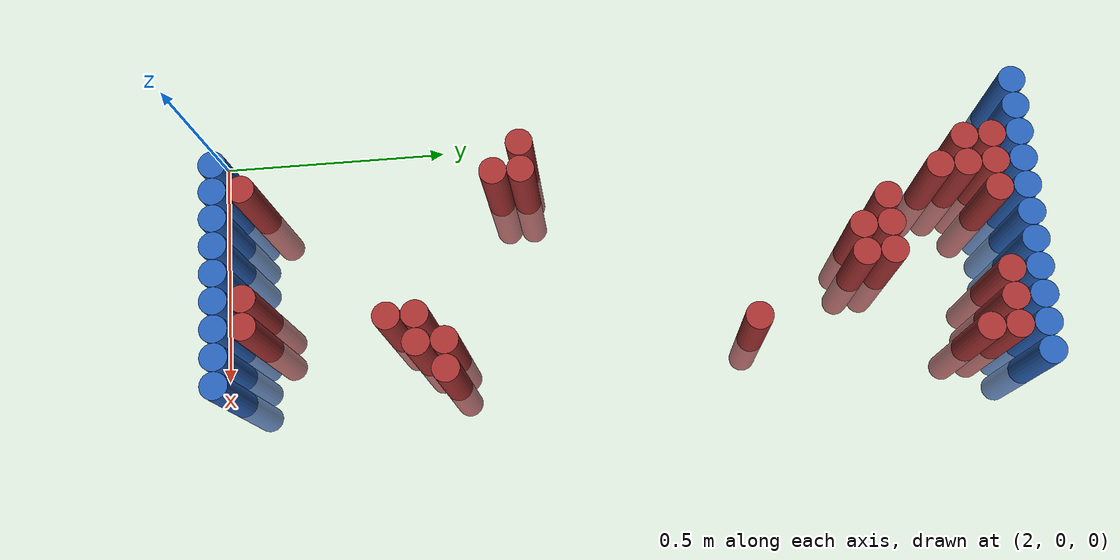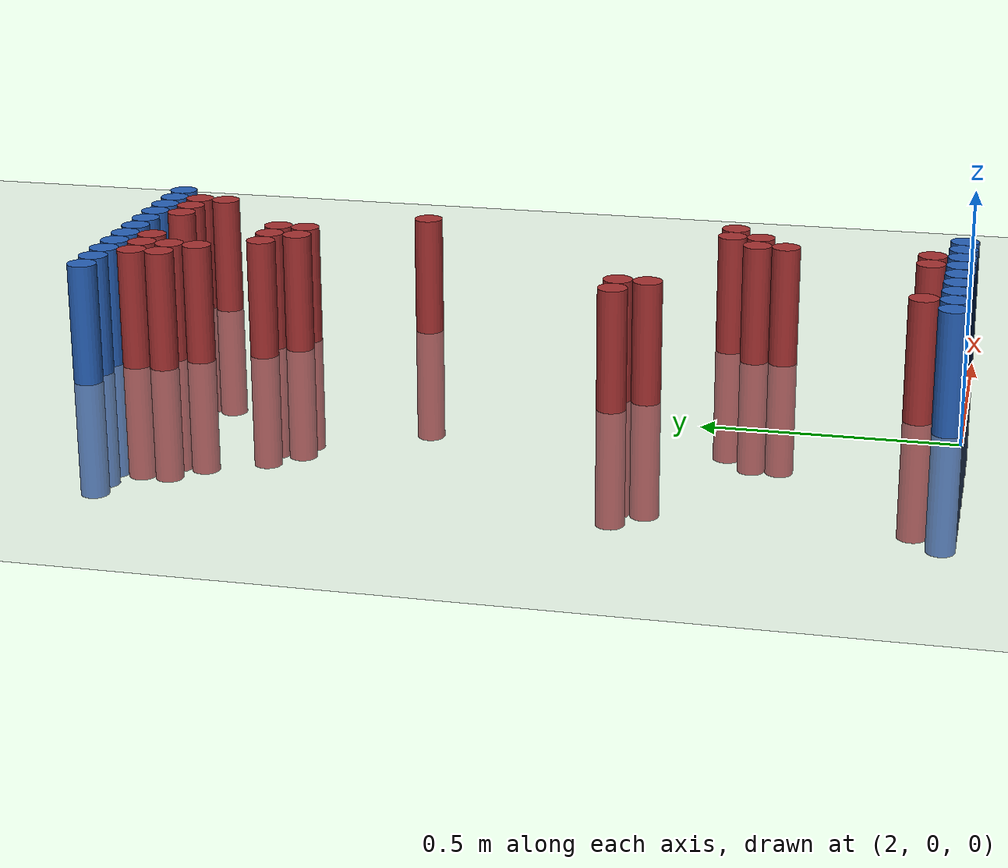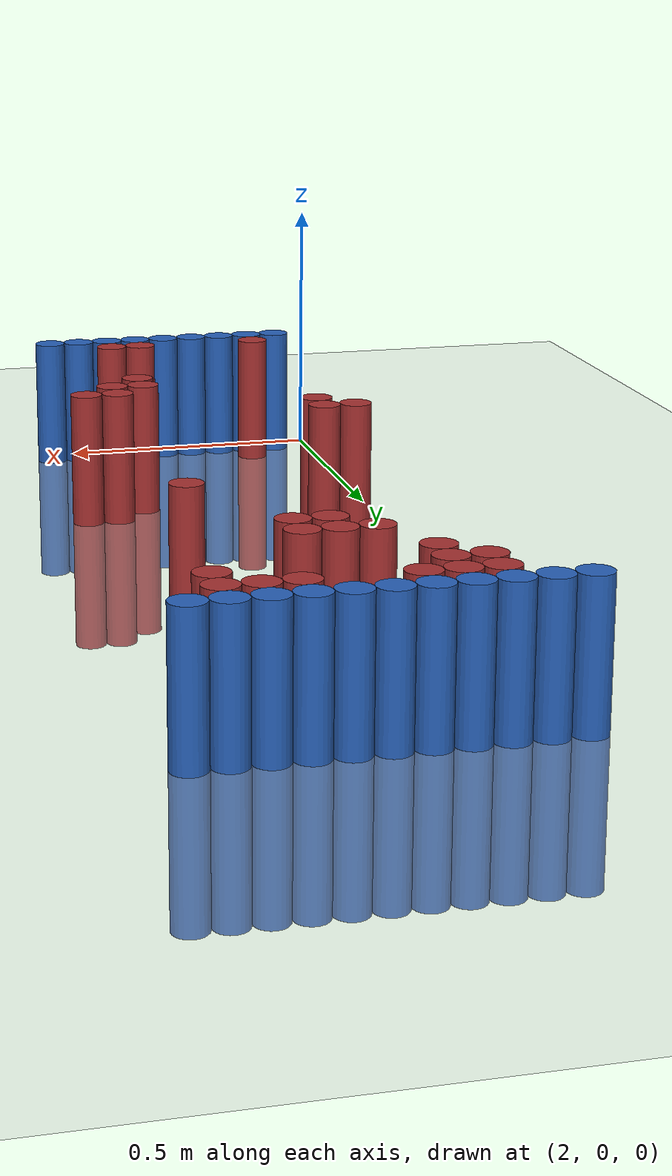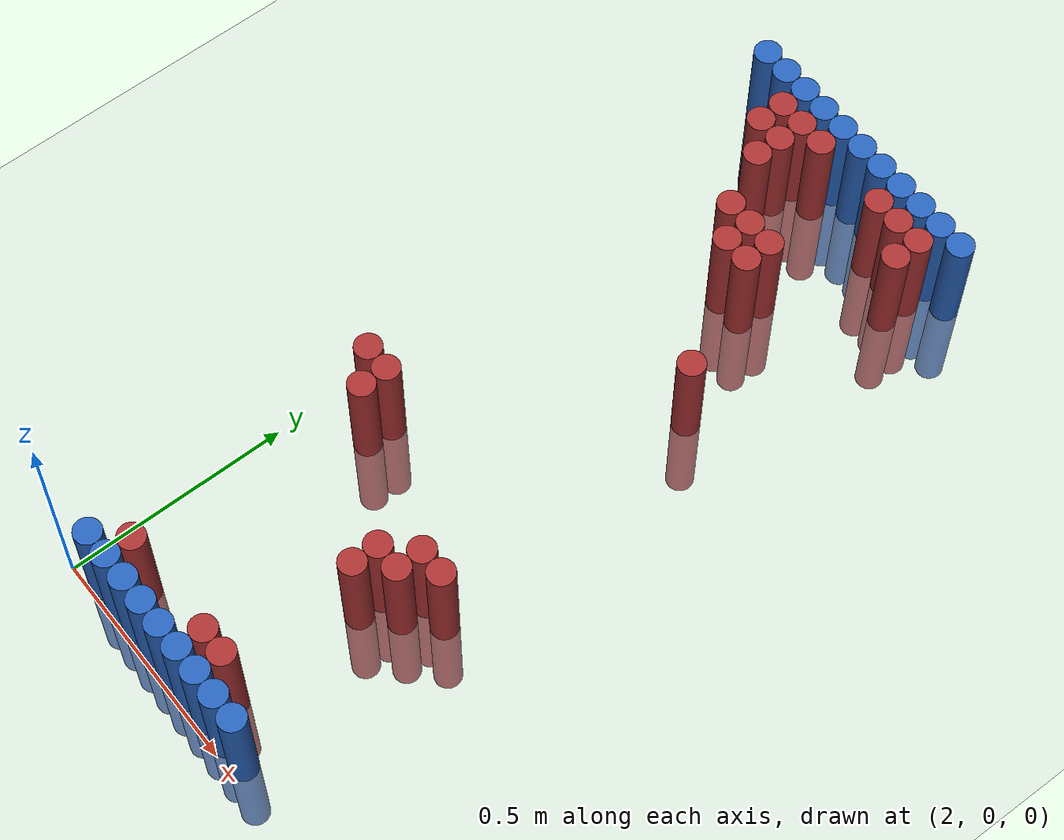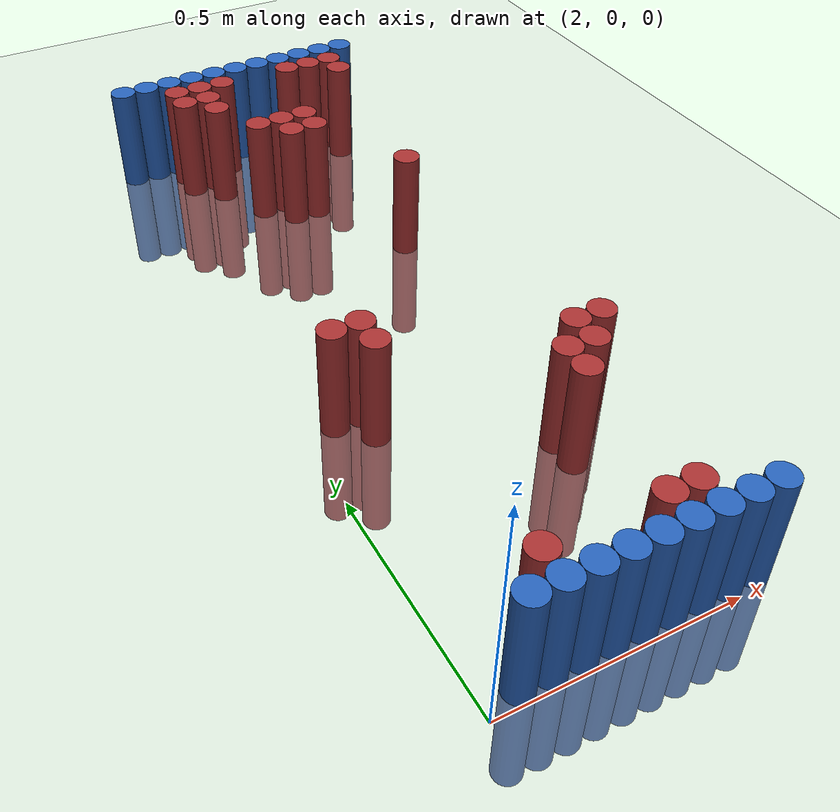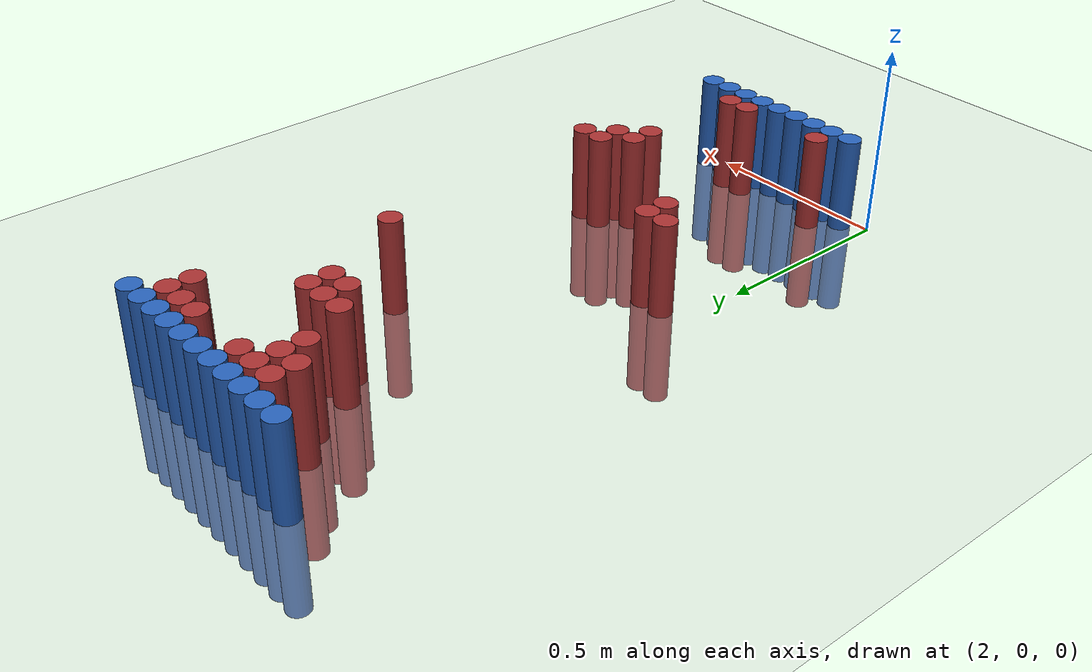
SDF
<sdf version="1.6">
 <world name="default">
  <model name="ground_plane">
   <static>1</static>
   <link name="link">
    <collision name="collision">
     <geometry><plane><normal>0 0 1</normal><size>100 100</size></plane></geometry>
     <surface><friction><ode><mu>100</mu><mu2>50</mu2></ode></friction></surface>
    </collision>
    <visual name="visual">
     <cast_shadows>0</cast_shadows>
     <geometry><plane><normal>0 0 1</normal><size>100 100</size></plane></geometry>
     <material>
      <script><uri>file://media/materials/scripts/gazebo.material</uri><name>Gazebo/Grey</name></script>
     </material>
    </visual>
   </link>
  </model>
  <model name="unit_cylinder_94">
   <static>1</static>
   <pose>2.010000 1.770000 0.000000 0.000000 0.000000 0.000000</pose>
   <link name="link">
    <inertial>
     <mass>1</mass>
     <inertia><ixx>0.145833</ixx><ixy>0</ixy><ixz>0</ixz><iyy>0.145833</iyy><iyz>0</iyz><izz>0.125</izz></inertia>
    </inertial>
    <collision name="collision">
     <geometry><cylinder><radius>0.030000</radius><length>0.5</length></cylinder></geometry>
    </collision>
    <visual name="visual">
     <geometry><cylinder><radius>0.030000</radius><length>0.5</length></cylinder></geometry>
     <material>
      <ambient>0.152000 0.379000 0.720000 1</ambient>
      <diffuse>0.152000 0.379000 0.720000 1</diffuse>
     </material>
     <material>
      <script><name>Gazebo/Grey</name><uri>file://media/materials/scripts/gazebo.material</uri></script>
     </material>
    </visual>
   </link>
  </model>
  <model name="unit_cylinder_95">
   <static>1</static>
   <pose>2.070000 1.770000 0.000000 0.000000 0.000000 0.000000</pose>
   <link name="link">
    <inertial>
     <mass>1</mass>
     <inertia><ixx>0.145833</ixx><ixy>0</ixy><ixz>0</ixz><iyy>0.145833</iyy><iyz>0</iyz><izz>0.125</izz></inertia>
    </inertial>
    <collision name="collision">
     <geometry><cylinder><radius>0.030000</radius><length>0.5</length></cylinder></geometry>
    </collision>
    <visual name="visual">
     <geometry><cylinder><radius>0.030000</radius><length>0.5</length></cylinder></geometry>
     <material>
      <ambient>0.152000 0.379000 0.720000 1</ambient>
      <diffuse>0.152000 0.379000 0.720000 1</diffuse>
     </material>
     <material>
      <script><name>Gazebo/Grey</name><uri>file://media/materials/scripts/gazebo.material</uri></script>
     </material>
    </visual>
   </link>
  </model>
  <model name="unit_cylinder_96">
   <static>1</static>
   <pose>2.130000 1.770000 0.000000 0.000000 0.000000 0.000000</pose>
   <link name="link">
    <inertial>
     <mass>1</mass>
     <inertia><ixx>0.145833</ixx><ixy>0</ixy><ixz>0</ixz><iyy>0.145833</iyy><iyz>0</iyz><izz>0.125</izz></inertia>
    </inertial>
    <collision name="collision">
     <geometry><cylinder><radius>0.030000</radius><length>0.5</length></cylinder></geometry>
    </collision>
    <visual name="visual">
     <geometry><cylinder><radius>0.030000</radius><length>0.5</length></cylinder></geometry>
     <material>
      <ambient>0.152000 0.379000 0.720000 1</ambient>
      <diffuse>0.152000 0.379000 0.720000 1</diffuse>
     </material>
     <material>
      <script><name>Gazebo/Grey</name><uri>file://media/materials/scripts/gazebo.material</uri></script>
     </material>
    </visual>
   </link>
  </model>
  <model name="unit_cylinder_97">
   <static>1</static>
   <pose>2.190000 1.770000 0.000000 0.000000 0.000000 0.000000</pose>
   <link name="link">
    <inertial>
     <mass>1</mass>
     <inertia><ixx>0.145833</ixx><ixy>0</ixy><ixz>0</ixz><iyy>0.145833</iyy><iyz>0</iyz><izz>0.125</izz></inertia>
    </inertial>
    <collision name="collision">
     <geometry><cylinder><radius>0.030000</radius><length>0.5</length></cylinder></geometry>
    </collision>
    <visual name="visual">
     <geometry><cylinder><radius>0.030000</radius><length>0.5</length></cylinder></geometry>
     <material>
      <ambient>0.152000 0.379000 0.720000 1</ambient>
      <diffuse>0.152000 0.379000 0.720000 1</diffuse>
     </material>
     <material>
      <script><name>Gazebo/Grey</name><uri>file://media/materials/scripts/gazebo.material</uri></script>
     </material>
    </visual>
   </link>
  </model>
  <model name="unit_cylinder_98">
   <static>1</static>
   <pose>2.250000 1.770000 0.000000 0.000000 0.000000 0.000000</pose>
   <link name="link">
    <inertial>
     <mass>1</mass>
     <inertia><ixx>0.145833</ixx><ixy>0</ixy><ixz>0</ixz><iyy>0.145833</iyy><iyz>0</iyz><izz>0.125</izz></inertia>
    </inertial>
    <collision name="collision">
     <geometry><cylinder><radius>0.030000</radius><length>0.5</length></cylinder></geometry>
    </collision>
    <visual name="visual">
     <geometry><cylinder><radius>0.030000</radius><length>0.5</length></cylinder></geometry>
     <material>
      <ambient>0.152000 0.379000 0.720000 1</ambient>
      <diffuse>0.152000 0.379000 0.720000 1</diffuse>
     </material>
     <material>
      <script><name>Gazebo/Grey</name><uri>file://media/materials/scripts/gazebo.material</uri></script>
     </material>
    </visual>
   </link>
  </model>
  <model name="unit_cylinder_99">
   <static>1</static>
   <pose>2.310000 1.770000 0.000000 0.000000 0.000000 0.000000</pose>
   <link name="link">
    <inertial>
     <mass>1</mass>
     <inertia><ixx>0.145833</ixx><ixy>0</ixy><ixz>0</ixz><iyy>0.145833</iyy><iyz>0</iyz><izz>0.125</izz></inertia>
    </inertial>
    <collision name="collision">
     <geometry><cylinder><radius>0.030000</radius><length>0.5</length></cylinder></geometry>
    </collision>
    <visual name="visual">
     <geometry><cylinder><radius>0.030000</radius><length>0.5</length></cylinder></geometry>
     <material>
      <ambient>0.152000 0.379000 0.720000 1</ambient>
      <diffuse>0.152000 0.379000 0.720000 1</diffuse>
     </material>
     <material>
      <script><name>Gazebo/Grey</name><uri>file://media/materials/scripts/gazebo.material</uri></script>
     </material>
    </visual>
   </link>
  </model>
  <model name="unit_cylinder_100">
   <static>1</static>
   <pose>2.370000 1.770000 0.000000 0.000000 0.000000 0.000000</pose>
   <link name="link">
    <inertial>
     <mass>1</mass>
     <inertia><ixx>0.145833</ixx><ixy>0</ixy><ixz>0</ixz><iyy>0.145833</iyy><iyz>0</iyz><izz>0.125</izz></inertia>
    </inertial>
    <collision name="collision">
     <geometry><cylinder><radius>0.030000</radius><length>0.5</length></cylinder></geometry>
    </collision>
    <visual name="visual">
     <geometry><cylinder><radius>0.030000</radius><length>0.5</length></cylinder></geometry>
     <material>
      <ambient>0.152000 0.379000 0.720000 1</ambient>
      <diffuse>0.152000 0.379000 0.720000 1</diffuse>
     </material>
     <material>
      <script><name>Gazebo/Grey</name><uri>file://media/materials/scripts/gazebo.material</uri></script>
     </material>
    </visual>
   </link>
  </model>
  <model name="unit_cylinder_101">
   <static>1</static>
   <pose>2.430000 1.770000 0.000000 0.000000 0.000000 0.000000</pose>
   <link name="link">
    <inertial>
     <mass>1</mass>
     <inertia><ixx>0.145833</ixx><ixy>0</ixy><ixz>0</ixz><iyy>0.145833</iyy><iyz>0</iyz><izz>0.125</izz></inertia>
    </inertial>
    <collision name="collision">
     <geometry><cylinder><radius>0.030000</radius><length>0.5</length></cylinder></geometry>
    </collision>
    <visual name="visual">
     <geometry><cylinder><radius>0.030000</radius><length>0.5</length></cylinder></geometry>
     <material>
      <ambient>0.152000 0.379000 0.720000 1</ambient>
      <diffuse>0.152000 0.379000 0.720000 1</diffuse>
     </material>
     <material>
      <script><name>Gazebo/Grey</name><uri>file://media/materials/scripts/gazebo.material</uri></script>
     </material>
    </visual>
   </link>
  </model>
  <model name="unit_cylinder_102">
   <static>1</static>
   <pose>2.490000 1.770000 0.000000 0.000000 0.000000 0.000000</pose>
   <link name="link">
    <inertial>
     <mass>1</mass>
     <inertia><ixx>0.145833</ixx><ixy>0</ixy><ixz>0</ixz><iyy>0.145833</iyy><iyz>0</iyz><izz>0.125</izz></inertia>
    </inertial>
    <collision name="collision">
     <geometry><cylinder><radius>0.030000</radius><length>0.5</length></cylinder></geometry>
    </collision>
    <visual name="visual">
     <geometry><cylinder><radius>0.030000</radius><length>0.5</length></cylinder></geometry>
     <material>
      <ambient>0.152000 0.379000 0.720000 1</ambient>
      <diffuse>0.152000 0.379000 0.720000 1</diffuse>
     </material>
     <material>
      <script><name>Gazebo/Grey</name><uri>file://media/materials/scripts/gazebo.material</uri></script>
     </material>
    </visual>
   </link>
  </model>
  <model name="unit_cylinder_103">
   <static>1</static>
   <pose>2.550000 1.770000 0.000000 0.000000 0.000000 0.000000</pose>
   <link name="link">
    <inertial>
     <mass>1</mass>
     <inertia><ixx>0.145833</ixx><ixy>0</ixy><ixz>0</ixz><iyy>0.145833</iyy><iyz>0</iyz><izz>0.125</izz></inertia>
    </inertial>
    <collision name="collision">
     <geometry><cylinder><radius>0.030000</radius><length>0.5</length></cylinder></geometry>
    </collision>
    <visual name="visual">
     <geometry><cylinder><radius>0.030000</radius><length>0.5</length></cylinder></geometry>
     <material>
      <ambient>0.152000 0.379000 0.720000 1</ambient>
      <diffuse>0.152000 0.379000 0.720000 1</diffuse>
     </material>
     <material>
      <script><name>Gazebo/Grey</name><uri>file://media/materials/scripts/gazebo.material</uri></script>
     </material>
    </visual>
   </link>
  </model>
  <model name="unit_cylinder_104">
   <static>1</static>
   <pose>2.610000 1.770000 0.000000 0.000000 0.000000 0.000000</pose>
   <link name="link">
    <inertial>
     <mass>1</mass>
     <inertia><ixx>0.145833</ixx><ixy>0</ixy><ixz>0</ixz><iyy>0.145833</iyy><iyz>0</iyz><izz>0.125</izz></inertia>
    </inertial>
    <collision name="collision">
     <geometry><cylinder><radius>0.030000</radius><length>0.5</length></cylinder></geometry>
    </collision>
    <visual name="visual">
     <geometry><cylinder><radius>0.030000</radius><length>0.5</length></cylinder></geometry>
     <material>
      <ambient>0.152000 0.379000 0.720000 1</ambient>
      <diffuse>0.152000 0.379000 0.720000 1</diffuse>
     </material>
     <material>
      <script><name>Gazebo/Grey</name><uri>file://media/materials/scripts/gazebo.material</uri></script>
     </material>
    </visual>
   </link>
  </model>
  <model name="unit_cylinder_125">
   <static>1</static>
   <pose>2.130000 1.710000 0.000000 0.000000 0.000000 0.000000</pose>
   <link name="link">
    <inertial>
     <mass>1</mass>
     <inertia><ixx>0.145833</ixx><ixy>0</ixy><ixz>0</ixz><iyy>0.145833</iyy><iyz>0</iyz><izz>0.125</izz></inertia>
    </inertial>
    <collision name="collision">
     <geometry><cylinder><radius>0.030000</radius><length>0.5</length></cylinder></geometry>
    </collision>
    <visual name="visual">
     <geometry><cylinder><radius>0.030000</radius><length>0.5</length></cylinder></geometry>
     <material>
      <ambient>0.648000 0.192000 0.192000 1</ambient>
      <diffuse>0.648000 0.192000 0.192000 1</diffuse>
     </material>
     <material>
      <script><name>Gazebo/Grey</name><uri>file://media/materials/scripts/gazebo.material</uri></script>
     </material>
    </visual>
   </link>
  </model>
  <model name="unit_cylinder_126">
   <static>1</static>
   <pose>2.190000 1.710000 0.000000 0.000000 0.000000 0.000000</pose>
   <link name="link">
    <inertial>
     <mass>1</mass>
     <inertia><ixx>0.145833</ixx><ixy>0</ixy><ixz>0</ixz><iyy>0.145833</iyy><iyz>0</iyz><izz>0.125</izz></inertia>
    </inertial>
    <collision name="collision">
     <geometry><cylinder><radius>0.030000</radius><length>0.5</length></cylinder></geometry>
    </collision>
    <visual name="visual">
     <geometry><cylinder><radius>0.030000</radius><length>0.5</length></cylinder></geometry>
     <material>
      <ambient>0.648000 0.192000 0.192000 1</ambient>
      <diffuse>0.648000 0.192000 0.192000 1</diffuse>
     </material>
     <material>
      <script><name>Gazebo/Grey</name><uri>file://media/materials/scripts/gazebo.material</uri></script>
     </material>
    </visual>
   </link>
  </model>
  <model name="unit_cylinder_127">
   <static>1</static>
   <pose>2.250000 1.710000 0.000000 0.000000 0.000000 0.000000</pose>
   <link name="link">
    <inertial>
     <mass>1</mass>
     <inertia><ixx>0.145833</ixx><ixy>0</ixy><ixz>0</ixz><iyy>0.145833</iyy><iyz>0</iyz><izz>0.125</izz></inertia>
    </inertial>
    <collision name="collision">
     <geometry><cylinder><radius>0.030000</radius><length>0.5</length></cylinder></geometry>
    </collision>
    <visual name="visual">
     <geometry><cylinder><radius>0.030000</radius><length>0.5</length></cylinder></geometry>
     <material>
      <ambient>0.648000 0.192000 0.192000 1</ambient>
      <diffuse>0.648000 0.192000 0.192000 1</diffuse>
     </material>
     <material>
      <script><name>Gazebo/Grey</name><uri>file://media/materials/scripts/gazebo.material</uri></script>
     </material>
    </visual>
   </link>
  </model>
  <model name="unit_cylinder_128">
   <static>1</static>
   <pose>2.430000 1.710000 0.000000 0.000000 0.000000 0.000000</pose>
   <link name="link">
    <inertial>
     <mass>1</mass>
     <inertia><ixx>0.145833</ixx><ixy>0</ixy><ixz>0</ixz><iyy>0.145833</iyy><iyz>0</iyz><izz>0.125</izz></inertia>
    </inertial>
    <collision name="collision">
     <geometry><cylinder><radius>0.030000</radius><length>0.5</length></cylinder></geometry>
    </collision>
    <visual name="visual">
     <geometry><cylinder><radius>0.030000</radius><length>0.5</length></cylinder></geometry>
     <material>
      <ambient>0.648000 0.192000 0.192000 1</ambient>
      <diffuse>0.648000 0.192000 0.192000 1</diffuse>
     </material>
     <material>
      <script><name>Gazebo/Grey</name><uri>file://media/materials/scripts/gazebo.material</uri></script>
     </material>
    </visual>
   </link>
  </model>
  <model name="unit_cylinder_129">
   <static>1</static>
   <pose>2.490000 1.710000 0.000000 0.000000 0.000000 0.000000</pose>
   <link name="link">
    <inertial>
     <mass>1</mass>
     <inertia><ixx>0.145833</ixx><ixy>0</ixy><ixz>0</ixz><iyy>0.145833</iyy><iyz>0</iyz><izz>0.125</izz></inertia>
    </inertial>
    <collision name="collision">
     <geometry><cylinder><radius>0.030000</radius><length>0.5</length></cylinder></geometry>
    </collision>
    <visual name="visual">
     <geometry><cylinder><radius>0.030000</radius><length>0.5</length></cylinder></geometry>
     <material>
      <ambient>0.648000 0.192000 0.192000 1</ambient>
      <diffuse>0.648000 0.192000 0.192000 1</diffuse>
     </material>
     <material>
      <script><name>Gazebo/Grey</name><uri>file://media/materials/scripts/gazebo.material</uri></script>
     </material>
    </visual>
   </link>
  </model>
  <model name="unit_cylinder_130">
   <static>1</static>
   <pose>2.550000 1.710000 0.000000 0.000000 0.000000 0.000000</pose>
   <link name="link">
    <inertial>
     <mass>1</mass>
     <inertia><ixx>0.145833</ixx><ixy>0</ixy><ixz>0</ixz><iyy>0.145833</iyy><iyz>0</iyz><izz>0.125</izz></inertia>
    </inertial>
    <collision name="collision">
     <geometry><cylinder><radius>0.030000</radius><length>0.5</length></cylinder></geometry>
    </collision>
    <visual name="visual">
     <geometry><cylinder><radius>0.030000</radius><length>0.5</length></cylinder></geometry>
     <material>
      <ambient>0.648000 0.192000 0.192000 1</ambient>
      <diffuse>0.648000 0.192000 0.192000 1</diffuse>
     </material>
     <material>
      <script><name>Gazebo/Grey</name><uri>file://media/materials/scripts/gazebo.material</uri></script>
     </material>
    </visual>
   </link>
  </model>
  <model name="unit_cylinder_141">
   <static>1</static>
   <pose>2.130000 1.650000 0.000000 0.000000 0.000000 0.000000</pose>
   <link name="link">
    <inertial>
     <mass>1</mass>
     <inertia><ixx>0.145833</ixx><ixy>0</ixy><ixz>0</ixz><iyy>0.145833</iyy><iyz>0</iyz><izz>0.125</izz></inertia>
    </inertial>
    <collision name="collision">
     <geometry><cylinder><radius>0.030000</radius><length>0.5</length></cylinder></geometry>
    </collision>
    <visual name="visual">
     <geometry><cylinder><radius>0.030000</radius><length>0.5</length></cylinder></geometry>
     <material>
      <ambient>0.648000 0.192000 0.192000 1</ambient>
      <diffuse>0.648000 0.192000 0.192000 1</diffuse>
     </material>
     <material>
      <script><name>Gazebo/Grey</name><uri>file://media/materials/scripts/gazebo.material</uri></script>
     </material>
    </visual>
   </link>
  </model>
  <model name="unit_cylinder_142">
   <static>1</static>
   <pose>2.190000 1.650000 0.000000 0.000000 0.000000 0.000000</pose>
   <link name="link">
    <inertial>
     <mass>1</mass>
     <inertia><ixx>0.145833</ixx><ixy>0</ixy><ixz>0</ixz><iyy>0.145833</iyy><iyz>0</iyz><izz>0.125</izz></inertia>
    </inertial>
    <collision name="collision">
     <geometry><cylinder><radius>0.030000</radius><length>0.5</length></cylinder></geometry>
    </collision>
    <visual name="visual">
     <geometry><cylinder><radius>0.030000</radius><length>0.5</length></cylinder></geometry>
     <material>
      <ambient>0.648000 0.192000 0.192000 1</ambient>
      <diffuse>0.648000 0.192000 0.192000 1</diffuse>
     </material>
     <material>
      <script><name>Gazebo/Grey</name><uri>file://media/materials/scripts/gazebo.material</uri></script>
     </material>
    </visual>
   </link>
  </model>
  <model name="unit_cylinder_143">
   <static>1</static>
   <pose>2.550000 1.650000 0.000000 0.000000 0.000000 0.000000</pose>
   <link name="link">
    <inertial>
     <mass>1</mass>
     <inertia><ixx>0.145833</ixx><ixy>0</ixy><ixz>0</ixz><iyy>0.145833</iyy><iyz>0</iyz><izz>0.125</izz></inertia>
    </inertial>
    <collision name="collision">
     <geometry><cylinder><radius>0.030000</radius><length>0.5</length></cylinder></geometry>
    </collision>
    <visual name="visual">
     <geometry><cylinder><radius>0.030000</radius><length>0.5</length></cylinder></geometry>
     <material>
      <ambient>0.648000 0.192000 0.192000 1</ambient>
      <diffuse>0.648000 0.192000 0.192000 1</diffuse>
     </material>
     <material>
      <script><name>Gazebo/Grey</name><uri>file://media/materials/scripts/gazebo.material</uri></script>
     </material>
    </visual>
   </link>
  </model>
  <model name="unit_cylinder_145">
   <static>1</static>
   <pose>2.190000 1.590000 0.000000 0.000000 0.000000 0.000000</pose>
   <link name="link">
    <inertial>
     <mass>1</mass>
     <inertia><ixx>0.145833</ixx><ixy>0</ixy><ixz>0</ixz><iyy>0.145833</iyy><iyz>0</iyz><izz>0.125</izz></inertia>
    </inertial>
    <collision name="collision">
     <geometry><cylinder><radius>0.030000</radius><length>0.5</length></cylinder></geometry>
    </collision>
    <visual name="visual">
     <geometry><cylinder><radius>0.030000</radius><length>0.5</length></cylinder></geometry>
     <material>
      <ambient>0.648000 0.192000 0.192000 1</ambient>
      <diffuse>0.648000 0.192000 0.192000 1</diffuse>
     </material>
     <material>
      <script><name>Gazebo/Grey</name><uri>file://media/materials/scripts/gazebo.material</uri></script>
     </material>
    </visual>
   </link>
  </model>
  <model name="unit_cylinder_148">
   <static>1</static>
   <pose>2.250000 1.470000 0.000000 0.000000 0.000000 0.000000</pose>
   <link name="link">
    <inertial>
     <mass>1</mass>
     <inertia><ixx>0.145833</ixx><ixy>0</ixy><ixz>0</ixz><iyy>0.145833</iyy><iyz>0</iyz><izz>0.125</izz></inertia>
    </inertial>
    <collision name="collision">
     <geometry><cylinder><radius>0.030000</radius><length>0.5</length></cylinder></geometry>
    </collision>
    <visual name="visual">
     <geometry><cylinder><radius>0.030000</radius><length>0.5</length></cylinder></geometry>
     <material>
      <ambient>0.648000 0.192000 0.192000 1</ambient>
      <diffuse>0.648000 0.192000 0.192000 1</diffuse>
     </material>
     <material>
      <script><name>Gazebo/Grey</name><uri>file://media/materials/scripts/gazebo.material</uri></script>
     </material>
    </visual>
   </link>
  </model>
  <model name="unit_cylinder_149">
   <static>1</static>
   <pose>2.310000 1.470000 0.000000 0.000000 0.000000 0.000000</pose>
   <link name="link">
    <inertial>
     <mass>1</mass>
     <inertia><ixx>0.145833</ixx><ixy>0</ixy><ixz>0</ixz><iyy>0.145833</iyy><iyz>0</iyz><izz>0.125</izz></inertia>
    </inertial>
    <collision name="collision">
     <geometry><cylinder><radius>0.030000</radius><length>0.5</length></cylinder></geometry>
    </collision>
    <visual name="visual">
     <geometry><cylinder><radius>0.030000</radius><length>0.5</length></cylinder></geometry>
     <material>
      <ambient>0.648000 0.192000 0.192000 1</ambient>
      <diffuse>0.648000 0.192000 0.192000 1</diffuse>
     </material>
     <material>
      <script><name>Gazebo/Grey</name><uri>file://media/materials/scripts/gazebo.material</uri></script>
     </material>
    </visual>
   </link>
  </model>
  <model name="unit_cylinder_150">
   <static>1</static>
   <pose>2.370000 1.470000 0.000000 0.000000 0.000000 0.000000</pose>
   <link name="link">
    <inertial>
     <mass>1</mass>
     <inertia><ixx>0.145833</ixx><ixy>0</ixy><ixz>0</ixz><iyy>0.145833</iyy><iyz>0</iyz><izz>0.125</izz></inertia>
    </inertial>
    <collision name="collision">
     <geometry><cylinder><radius>0.030000</radius><length>0.5</length></cylinder></geometry>
    </collision>
    <visual name="visual">
     <geometry><cylinder><radius>0.030000</radius><length>0.5</length></cylinder></geometry>
     <material>
      <ambient>0.648000 0.192000 0.192000 1</ambient>
      <diffuse>0.648000 0.192000 0.192000 1</diffuse>
     </material>
     <material>
      <script><name>Gazebo/Grey</name><uri>file://media/materials/scripts/gazebo.material</uri></script>
     </material>
    </visual>
   </link>
  </model>
  <model name="unit_cylinder_152">
   <static>1</static>
   <pose>2.310000 1.410000 0.000000 0.000000 0.000000 0.000000</pose>
   <link name="link">
    <inertial>
     <mass>1</mass>
     <inertia><ixx>0.145833</ixx><ixy>0</ixy><ixz>0</ixz><iyy>0.145833</iyy><iyz>0</iyz><izz>0.125</izz></inertia>
    </inertial>
    <collision name="collision">
     <geometry><cylinder><radius>0.030000</radius><length>0.5</length></cylinder></geometry>
    </collision>
    <visual name="visual">
     <geometry><cylinder><radius>0.030000</radius><length>0.5</length></cylinder></geometry>
     <material>
      <ambient>0.648000 0.192000 0.192000 1</ambient>
      <diffuse>0.648000 0.192000 0.192000 1</diffuse>
     </material>
     <material>
      <script><name>Gazebo/Grey</name><uri>file://media/materials/scripts/gazebo.material</uri></script>
     </material>
    </visual>
   </link>
  </model>
  <model name="unit_cylinder_153">
   <static>1</static>
   <pose>2.370000 1.410000 0.000000 0.000000 0.000000 0.000000</pose>
   <link name="link">
    <inertial>
     <mass>1</mass>
     <inertia><ixx>0.145833</ixx><ixy>0</ixy><ixz>0</ixz><iyy>0.145833</iyy><iyz>0</iyz><izz>0.125</izz></inertia>
    </inertial>
    <collision name="collision">
     <geometry><cylinder><radius>0.030000</radius><length>0.5</length></cylinder></geometry>
    </collision>
    <visual name="visual">
     <geometry><cylinder><radius>0.030000</radius><length>0.5</length></cylinder></geometry>
     <material>
      <ambient>0.648000 0.192000 0.192000 1</ambient>
      <diffuse>0.648000 0.192000 0.192000 1</diffuse>
     </material>
     <material>
      <script><name>Gazebo/Grey</name><uri>file://media/materials/scripts/gazebo.material</uri></script>
     </material>
    </visual>
   </link>
  </model>
  <model name="unit_cylinder_158">
   <static>1</static>
   <pose>2.490000 1.170000 0.000000 0.000000 0.000000 0.000000</pose>
   <link name="link">
    <inertial>
     <mass>1</mass>
     <inertia><ixx>0.145833</ixx><ixy>0</ixy><ixz>0</ixz><iyy>0.145833</iyy><iyz>0</iyz><izz>0.125</izz></inertia>
    </inertial>
    <collision name="collision">
     <geometry><cylinder><radius>0.030000</radius><length>0.5</length></cylinder></geometry>
    </collision>
    <visual name="visual">
     <geometry><cylinder><radius>0.030000</radius><length>0.5</length></cylinder></geometry>
     <material>
      <ambient>0.648000 0.192000 0.192000 1</ambient>
      <diffuse>0.648000 0.192000 0.192000 1</diffuse>
     </material>
     <material>
      <script><name>Gazebo/Grey</name><uri>file://media/materials/scripts/gazebo.material</uri></script>
     </material>
    </visual>
   </link>
  </model>
  <model name="unit_cylinder_170">
   <static>1</static>
   <pose>2.070000 0.690000 0.000000 0.000000 0.000000 0.000000</pose>
   <link name="link">
    <inertial>
     <mass>1</mass>
     <inertia><ixx>0.145833</ixx><ixy>0</ixy><ixz>0</ixz><iyy>0.145833</iyy><iyz>0</iyz><izz>0.125</izz></inertia>
    </inertial>
    <collision name="collision">
     <geometry><cylinder><radius>0.030000</radius><length>0.5</length></cylinder></geometry>
    </collision>
    <visual name="visual">
     <geometry><cylinder><radius>0.030000</radius><length>0.5</length></cylinder></geometry>
     <material>
      <ambient>0.648000 0.192000 0.192000 1</ambient>
      <diffuse>0.648000 0.192000 0.192000 1</diffuse>
     </material>
     <material>
      <script><name>Gazebo/Grey</name><uri>file://media/materials/scripts/gazebo.material</uri></script>
     </material>
    </visual>
   </link>
  </model>
  <model name="unit_cylinder_171">
   <static>1</static>
   <pose>2.130000 0.690000 0.000000 0.000000 0.000000 0.000000</pose>
   <link name="link">
    <inertial>
     <mass>1</mass>
     <inertia><ixx>0.145833</ixx><ixy>0</ixy><ixz>0</ixz><iyy>0.145833</iyy><iyz>0</iyz><izz>0.125</izz></inertia>
    </inertial>
    <collision name="collision">
     <geometry><cylinder><radius>0.030000</radius><length>0.5</length></cylinder></geometry>
    </collision>
    <visual name="visual">
     <geometry><cylinder><radius>0.030000</radius><length>0.5</length></cylinder></geometry>
     <material>
      <ambient>0.648000 0.192000 0.192000 1</ambient>
      <diffuse>0.648000 0.192000 0.192000 1</diffuse>
     </material>
     <material>
      <script><name>Gazebo/Grey</name><uri>file://media/materials/scripts/gazebo.material</uri></script>
     </material>
    </visual>
   </link>
  </model>
  <model name="unit_cylinder_174">
   <static>1</static>
   <pose>2.130000 0.630000 0.000000 0.000000 0.000000 0.000000</pose>
   <link name="link">
    <inertial>
     <mass>1</mass>
     <inertia><ixx>0.145833</ixx><ixy>0</ixy><ixz>0</ixz><iyy>0.145833</iyy><iyz>0</iyz><izz>0.125</izz></inertia>
    </inertial>
    <collision name="collision">
     <geometry><cylinder><radius>0.030000</radius><length>0.5</length></cylinder></geometry>
    </collision>
    <visual name="visual">
     <geometry><cylinder><radius>0.030000</radius><length>0.5</length></cylinder></geometry>
     <material>
      <ambient>0.648000 0.192000 0.192000 1</ambient>
      <diffuse>0.648000 0.192000 0.192000 1</diffuse>
     </material>
     <material>
      <script><name>Gazebo/Grey</name><uri>file://media/materials/scripts/gazebo.material</uri></script>
     </material>
    </visual>
   </link>
  </model>
  <model name="unit_cylinder_178">
   <static>1</static>
   <pose>2.490000 0.510000 0.000000 0.000000 0.000000 0.000000</pose>
   <link name="link">
    <inertial>
     <mass>1</mass>
     <inertia><ixx>0.145833</ixx><ixy>0</ixy><ixz>0</ixz><iyy>0.145833</iyy><iyz>0</iyz><izz>0.125</izz></inertia>
    </inertial>
    <collision name="collision">
     <geometry><cylinder><radius>0.030000</radius><length>0.5</length></cylinder></geometry>
    </collision>
    <visual name="visual">
     <geometry><cylinder><radius>0.030000</radius><length>0.5</length></cylinder></geometry>
     <material>
      <ambient>0.648000 0.192000 0.192000 1</ambient>
      <diffuse>0.648000 0.192000 0.192000 1</diffuse>
     </material>
     <material>
      <script><name>Gazebo/Grey</name><uri>file://media/materials/scripts/gazebo.material</uri></script>
     </material>
    </visual>
   </link>
  </model>
  <model name="unit_cylinder_179">
   <static>1</static>
   <pose>2.550000 0.510000 0.000000 0.000000 0.000000 0.000000</pose>
   <link name="link">
    <inertial>
     <mass>1</mass>
     <inertia><ixx>0.145833</ixx><ixy>0</ixy><ixz>0</ixz><iyy>0.145833</iyy><iyz>0</iyz><izz>0.125</izz></inertia>
    </inertial>
    <collision name="collision">
     <geometry><cylinder><radius>0.030000</radius><length>0.5</length></cylinder></geometry>
    </collision>
    <visual name="visual">
     <geometry><cylinder><radius>0.030000</radius><length>0.5</length></cylinder></geometry>
     <material>
      <ambient>0.648000 0.192000 0.192000 1</ambient>
      <diffuse>0.648000 0.192000 0.192000 1</diffuse>
     </material>
     <material>
      <script><name>Gazebo/Grey</name><uri>file://media/materials/scripts/gazebo.material</uri></script>
     </material>
    </visual>
   </link>
  </model>
  <model name="unit_cylinder_180">
   <static>1</static>
   <pose>2.430000 0.450000 0.000000 0.000000 0.000000 0.000000</pose>
   <link name="link">
    <inertial>
     <mass>1</mass>
     <inertia><ixx>0.145833</ixx><ixy>0</ixy><ixz>0</ixz><iyy>0.145833</iyy><iyz>0</iyz><izz>0.125</izz></inertia>
    </inertial>
    <collision name="collision">
     <geometry><cylinder><radius>0.030000</radius><length>0.5</length></cylinder></geometry>
    </collision>
    <visual name="visual">
     <geometry><cylinder><radius>0.030000</radius><length>0.5</length></cylinder></geometry>
     <material>
      <ambient>0.648000 0.192000 0.192000 1</ambient>
      <diffuse>0.648000 0.192000 0.192000 1</diffuse>
     </material>
     <material>
      <script><name>Gazebo/Grey</name><uri>file://media/materials/scripts/gazebo.material</uri></script>
     </material>
    </visual>
   </link>
  </model>
  <model name="unit_cylinder_181">
   <static>1</static>
   <pose>2.490000 0.450000 0.000000 0.000000 0.000000 0.000000</pose>
   <link name="link">
    <inertial>
     <mass>1</mass>
     <inertia><ixx>0.145833</ixx><ixy>0</ixy><ixz>0</ixz><iyy>0.145833</iyy><iyz>0</iyz><izz>0.125</izz></inertia>
    </inertial>
    <collision name="collision">
     <geometry><cylinder><radius>0.030000</radius><length>0.5</length></cylinder></geometry>
    </collision>
    <visual name="visual">
     <geometry><cylinder><radius>0.030000</radius><length>0.5</length></cylinder></geometry>
     <material>
      <ambient>0.648000 0.192000 0.192000 1</ambient>
      <diffuse>0.648000 0.192000 0.192000 1</diffuse>
     </material>
     <material>
      <script><name>Gazebo/Grey</name><uri>file://media/materials/scripts/gazebo.material</uri></script>
     </material>
    </visual>
   </link>
  </model>
  <model name="unit_cylinder_182">
   <static>1</static>
   <pose>2.430000 0.390000 0.000000 0.000000 0.000000 0.000000</pose>
   <link name="link">
    <inertial>
     <mass>1</mass>
     <inertia><ixx>0.145833</ixx><ixy>0</ixy><ixz>0</ixz><iyy>0.145833</iyy><iyz>0</iyz><izz>0.125</izz></inertia>
    </inertial>
    <collision name="collision">
     <geometry><cylinder><radius>0.030000</radius><length>0.5</length></cylinder></geometry>
    </collision>
    <visual name="visual">
     <geometry><cylinder><radius>0.030000</radius><length>0.5</length></cylinder></geometry>
     <material>
      <ambient>0.648000 0.192000 0.192000 1</ambient>
      <diffuse>0.648000 0.192000 0.192000 1</diffuse>
     </material>
     <material>
      <script><name>Gazebo/Grey</name><uri>file://media/materials/scripts/gazebo.material</uri></script>
     </material>
    </visual>
   </link>
  </model>
  <model name="unit_cylinder_190">
   <static>1</static>
   <pose>2.130000 0.090000 0.000000 0.000000 0.000000 0.000000</pose>
   <link name="link">
    <inertial>
     <mass>1</mass>
     <inertia><ixx>0.145833</ixx><ixy>0</ixy><ixz>0</ixz><iyy>0.145833</iyy><iyz>0</iyz><izz>0.125</izz></inertia>
    </inertial>
    <collision name="collision">
     <geometry><cylinder><radius>0.030000</radius><length>0.5</length></cylinder></geometry>
    </collision>
    <visual name="visual">
     <geometry><cylinder><radius>0.030000</radius><length>0.5</length></cylinder></geometry>
     <material>
      <ambient>0.648000 0.192000 0.192000 1</ambient>
      <diffuse>0.648000 0.192000 0.192000 1</diffuse>
     </material>
     <material>
      <script><name>Gazebo/Grey</name><uri>file://media/materials/scripts/gazebo.material</uri></script>
     </material>
    </visual>
   </link>
  </model>
  <model name="unit_cylinder_191">
   <static>1</static>
   <pose>2.370000 0.090000 0.000000 0.000000 0.000000 0.000000</pose>
   <link name="link">
    <inertial>
     <mass>1</mass>
     <inertia><ixx>0.145833</ixx><ixy>0</ixy><ixz>0</ixz><iyy>0.145833</iyy><iyz>0</iyz><izz>0.125</izz></inertia>
    </inertial>
    <collision name="collision">
     <geometry><cylinder><radius>0.030000</radius><length>0.5</length></cylinder></geometry>
    </collision>
    <visual name="visual">
     <geometry><cylinder><radius>0.030000</radius><length>0.5</length></cylinder></geometry>
     <material>
      <ambient>0.648000 0.192000 0.192000 1</ambient>
      <diffuse>0.648000 0.192000 0.192000 1</diffuse>
     </material>
     <material>
      <script><name>Gazebo/Grey</name><uri>file://media/materials/scripts/gazebo.material</uri></script>
     </material>
    </visual>
   </link>
  </model>
  <model name="unit_cylinder_192">
   <static>1</static>
   <pose>2.430000 0.090000 0.000000 0.000000 0.000000 0.000000</pose>
   <link name="link">
    <inertial>
     <mass>1</mass>
     <inertia><ixx>0.145833</ixx><ixy>0</ixy><ixz>0</ixz><iyy>0.145833</iyy><iyz>0</iyz><izz>0.125</izz></inertia>
    </inertial>
    <collision name="collision">
     <geometry><cylinder><radius>0.030000</radius><length>0.5</length></cylinder></geometry>
    </collision>
    <visual name="visual">
     <geometry><cylinder><radius>0.030000</radius><length>0.5</length></cylinder></geometry>
     <material>
      <ambient>0.648000 0.192000 0.192000 1</ambient>
      <diffuse>0.648000 0.192000 0.192000 1</diffuse>
     </material>
     <material>
      <script><name>Gazebo/Grey</name><uri>file://media/materials/scripts/gazebo.material</uri></script>
     </material>
    </visual>
   </link>
  </model>
  <model name="unit_cylinder_204">
   <static>1</static>
   <pose>2.070000 0.030000 0.000000 0.000000 0.000000 0.000000</pose>
   <link name="link">
    <inertial>
     <mass>1</mass>
     <inertia><ixx>0.145833</ixx><ixy>0</ixy><ixz>0</ixz><iyy>0.145833</iyy><iyz>0</iyz><izz>0.125</izz></inertia>
    </inertial>
    <collision name="collision">
     <geometry><cylinder><radius>0.030000</radius><length>0.5</length></cylinder></geometry>
    </collision>
    <visual name="visual">
     <geometry><cylinder><radius>0.030000</radius><length>0.5</length></cylinder></geometry>
     <material>
      <ambient>0.152000 0.379000 0.720000 1</ambient>
      <diffuse>0.152000 0.379000 0.720000 1</diffuse>
     </material>
     <material>
      <script><name>Gazebo/Grey</name><uri>file://media/materials/scripts/gazebo.material</uri></script>
     </material>
    </visual>
   </link>
  </model>
  <model name="unit_cylinder_205">
   <static>1</static>
   <pose>2.130000 0.030000 0.000000 0.000000 0.000000 0.000000</pose>
   <link name="link">
    <inertial>
     <mass>1</mass>
     <inertia><ixx>0.145833</ixx><ixy>0</ixy><ixz>0</ixz><iyy>0.145833</iyy><iyz>0</iyz><izz>0.125</izz></inertia>
    </inertial>
    <collision name="collision">
     <geometry><cylinder><radius>0.030000</radius><length>0.5</length></cylinder></geometry>
    </collision>
    <visual name="visual">
     <geometry><cylinder><radius>0.030000</radius><length>0.5</length></cylinder></geometry>
     <material>
      <ambient>0.152000 0.379000 0.720000 1</ambient>
      <diffuse>0.152000 0.379000 0.720000 1</diffuse>
     </material>
     <material>
      <script><name>Gazebo/Grey</name><uri>file://media/materials/scripts/gazebo.material</uri></script>
     </material>
    </visual>
   </link>
  </model>
  <model name="unit_cylinder_206">
   <static>1</static>
   <pose>2.190000 0.030000 0.000000 0.000000 0.000000 0.000000</pose>
   <link name="link">
    <inertial>
     <mass>1</mass>
     <inertia><ixx>0.145833</ixx><ixy>0</ixy><ixz>0</ixz><iyy>0.145833</iyy><iyz>0</iyz><izz>0.125</izz></inertia>
    </inertial>
    <collision name="collision">
     <geometry><cylinder><radius>0.030000</radius><length>0.5</length></cylinder></geometry>
    </collision>
    <visual name="visual">
     <geometry><cylinder><radius>0.030000</radius><length>0.5</length></cylinder></geometry>
     <material>
      <ambient>0.152000 0.379000 0.720000 1</ambient>
      <diffuse>0.152000 0.379000 0.720000 1</diffuse>
     </material>
     <material>
      <script><name>Gazebo/Grey</name><uri>file://media/materials/scripts/gazebo.material</uri></script>
     </material>
    </visual>
   </link>
  </model>
  <model name="unit_cylinder_207">
   <static>1</static>
   <pose>2.250000 0.030000 0.000000 0.000000 0.000000 0.000000</pose>
   <link name="link">
    <inertial>
     <mass>1</mass>
     <inertia><ixx>0.145833</ixx><ixy>0</ixy><ixz>0</ixz><iyy>0.145833</iyy><iyz>0</iyz><izz>0.125</izz></inertia>
    </inertial>
    <collision name="collision">
     <geometry><cylinder><radius>0.030000</radius><length>0.5</length></cylinder></geometry>
    </collision>
    <visual name="visual">
     <geometry><cylinder><radius>0.030000</radius><length>0.5</length></cylinder></geometry>
     <material>
      <ambient>0.152000 0.379000 0.720000 1</ambient>
      <diffuse>0.152000 0.379000 0.720000 1</diffuse>
     </material>
     <material>
      <script><name>Gazebo/Grey</name><uri>file://media/materials/scripts/gazebo.material</uri></script>
     </material>
    </visual>
   </link>
  </model>
  <model name="unit_cylinder_208">
   <static>1</static>
   <pose>2.310000 0.030000 0.000000 0.000000 0.000000 0.000000</pose>
   <link name="link">
    <inertial>
     <mass>1</mass>
     <inertia><ixx>0.145833</ixx><ixy>0</ixy><ixz>0</ixz><iyy>0.145833</iyy><iyz>0</iyz><izz>0.125</izz></inertia>
    </inertial>
    <collision name="collision">
     <geometry><cylinder><radius>0.030000</radius><length>0.5</length></cylinder></geometry>
    </collision>
    <visual name="visual">
     <geometry><cylinder><radius>0.030000</radius><length>0.5</length></cylinder></geometry>
     <material>
      <ambient>0.152000 0.379000 0.720000 1</ambient>
      <diffuse>0.152000 0.379000 0.720000 1</diffuse>
     </material>
     <material>
      <script><name>Gazebo/Grey</name><uri>file://media/materials/scripts/gazebo.material</uri></script>
     </material>
    </visual>
   </link>
  </model>
  <model name="unit_cylinder_209">
   <static>1</static>
   <pose>2.370000 0.030000 0.000000 0.000000 0.000000 0.000000</pose>
   <link name="link">
    <inertial>
     <mass>1</mass>
     <inertia><ixx>0.145833</ixx><ixy>0</ixy><ixz>0</ixz><iyy>0.145833</iyy><iyz>0</iyz><izz>0.125</izz></inertia>
    </inertial>
    <collision name="collision">
     <geometry><cylinder><radius>0.030000</radius><length>0.5</length></cylinder></geometry>
    </collision>
    <visual name="visual">
     <geometry><cylinder><radius>0.030000</radius><length>0.5</length></cylinder></geometry>
     <material>
      <ambient>0.152000 0.379000 0.720000 1</ambient>
      <diffuse>0.152000 0.379000 0.720000 1</diffuse>
     </material>
     <material>
      <script><name>Gazebo/Grey</name><uri>file://media/materials/scripts/gazebo.material</uri></script>
     </material>
    </visual>
   </link>
  </model>
  <model name="unit_cylinder_210">
   <static>1</static>
   <pose>2.430000 0.030000 0.000000 0.000000 0.000000 0.000000</pose>
   <link name="link">
    <inertial>
     <mass>1</mass>
     <inertia><ixx>0.145833</ixx><ixy>0</ixy><ixz>0</ixz><iyy>0.145833</iyy><iyz>0</iyz><izz>0.125</izz></inertia>
    </inertial>
    <collision name="collision">
     <geometry><cylinder><radius>0.030000</radius><length>0.5</length></cylinder></geometry>
    </collision>
    <visual name="visual">
     <geometry><cylinder><radius>0.030000</radius><length>0.5</length></cylinder></geometry>
     <material>
      <ambient>0.152000 0.379000 0.720000 1</ambient>
      <diffuse>0.152000 0.379000 0.720000 1</diffuse>
     </material>
     <material>
      <script><name>Gazebo/Grey</name><uri>file://media/materials/scripts/gazebo.material</uri></script>
     </material>
    </visual>
   </link>
  </model>
  <model name="unit_cylinder_211">
   <static>1</static>
   <pose>2.490000 0.030000 0.000000 0.000000 0.000000 0.000000</pose>
   <link name="link">
    <inertial>
     <mass>1</mass>
     <inertia><ixx>0.145833</ixx><ixy>0</ixy><ixz>0</ixz><iyy>0.145833</iyy><iyz>0</iyz><izz>0.125</izz></inertia>
    </inertial>
    <collision name="collision">
     <geometry><cylinder><radius>0.030000</radius><length>0.5</length></cylinder></geometry>
    </collision>
    <visual name="visual">
     <geometry><cylinder><radius>0.030000</radius><length>0.5</length></cylinder></geometry>
     <material>
      <ambient>0.152000 0.379000 0.720000 1</ambient>
      <diffuse>0.152000 0.379000 0.720000 1</diffuse>
     </material>
     <material>
      <script><name>Gazebo/Grey</name><uri>file://media/materials/scripts/gazebo.material</uri></script>
     </material>
    </visual>
   </link>
  </model>
  <model name="unit_cylinder_212">
   <static>1</static>
   <pose>2.550000 0.030000 0.000000 0.000000 0.000000 0.000000</pose>
   <link name="link">
    <inertial>
     <mass>1</mass>
     <inertia><ixx>0.145833</ixx><ixy>0</ixy><ixz>0</ixz><iyy>0.145833</iyy><iyz>0</iyz><izz>0.125</izz></inertia>
    </inertial>
    <collision name="collision">
     <geometry><cylinder><radius>0.030000</radius><length>0.5</length></cylinder></geometry>
    </collision>
    <visual name="visual">
     <geometry><cylinder><radius>0.030000</radius><length>0.5</length></cylinder></geometry>
     <material>
      <ambient>0.152000 0.379000 0.720000 1</ambient>
      <diffuse>0.152000 0.379000 0.720000 1</diffuse>
     </material>
     <material>
      <script><name>Gazebo/Grey</name><uri>file://media/materials/scripts/gazebo.material</uri></script>
     </material>
    </visual>
   </link>
  </model>
 </world>
</sdf>
